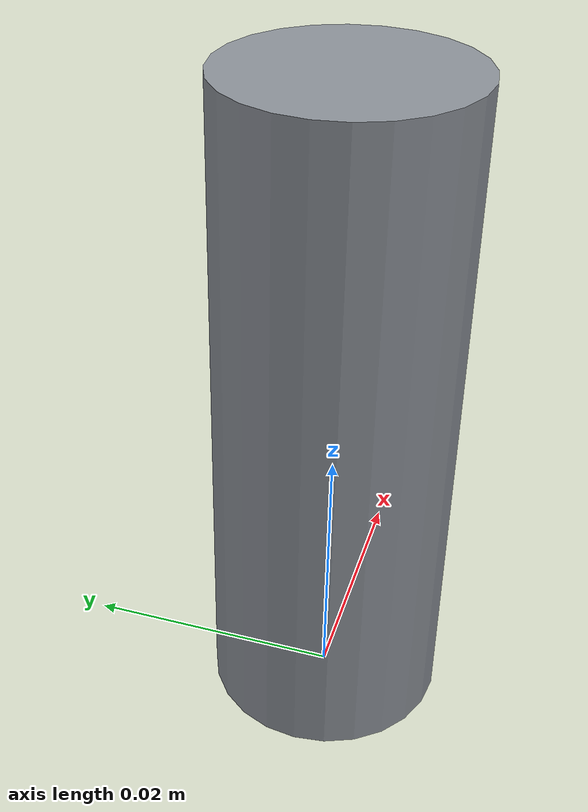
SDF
<?xml version="1.0"?>
<!--
  Peg: a free body the gripper can pick up. Solid PLA cylinder, radius 9 mm,
  length 50 mm (mass 0.0158 kg). Origin at the bottom face centre.
  Friction 1.0 so it doesn't slip in the gripper.
-->
<sdf version="1.9">
  <model name="peg">
    <!-- Ground-truth label for the segmentation camera. Unique per object type. -->
    <plugin filename="gz-sim-label-system" name="gz::sim::systems::Label">
      <label>3</label>
    </plugin>
    <link name="peg_link">
      <inertial>
        <pose>0 0 0.025 0 0 0</pose>
        <mass>0.01578</mass>
        <inertia>
          <ixx>3.6064e-06</ixx>
          <iyy>3.6064e-06</iyy>
          <izz>6.3897e-07</izz>
          <ixy>0</ixy>
          <ixz>0</ixz>
          <iyz>0</iyz>
        </inertia>
      </inertial>

      <visual name="visual">
        <pose>0 0 0.025 0 0 0</pose>
        <geometry>
          <cylinder>
            <radius>0.009</radius>
            <length>0.05</length>
          </cylinder>
        </geometry>
        <material>
          <ambient>0.55 0.57 0.60 1.0</ambient>
          <diffuse>0.55 0.57 0.60 1.0</diffuse>
          <specular>0.6 0.6 0.6 1.0</specular>
        </material>
      </visual>

      <collision name="collision">
        <pose>0 0 0.025 0 0 0</pose>
        <geometry>
          <cylinder>
            <radius>0.009</radius>
            <length>0.05</length>
          </cylinder>
        </geometry>
        <surface>
          <friction>
            <ode>
              <mu>1.0</mu>
              <mu2>1.0</mu2>
            </ode>
          </friction>
        </surface>
      </collision>
    </link>
  </model>
</sdf>
